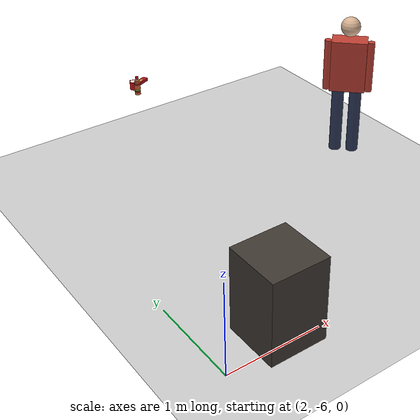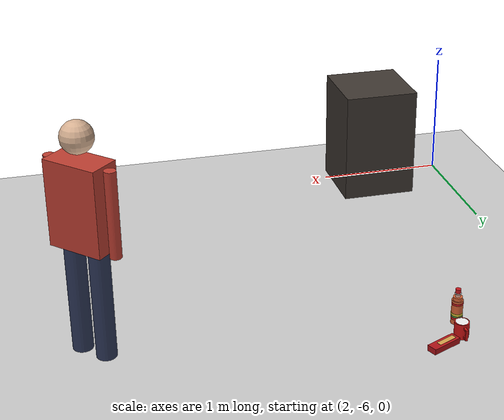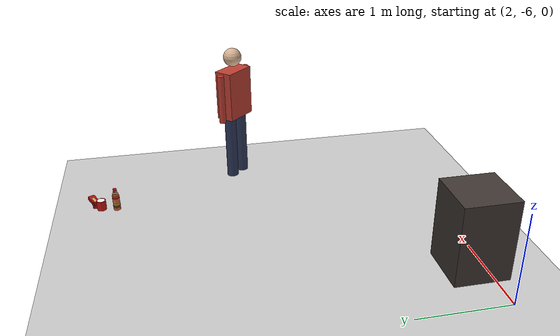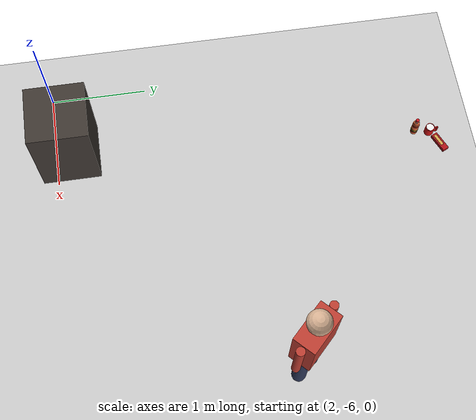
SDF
<sdf version="1.6">
 <world name="robocup_casa">
  <include><uri>model://sun</uri></include>
  <include><uri>model://ground_plane</uri></include>
  <model name="cooking_table">
   <static>true</static>
   <link name="l0">
    <pose>2.660 -5.850 0.450 0 0 0.0000</pose>
    <collision name="c"><geometry><box><size>0.600 0.600 0.900</size></box></geometry></collision>
    <visual name="v">
     <geometry><box><size>0.600 0.600 0.900</size></box></geometry>
     <material><ambient>0.25 0.22 0.20 1</ambient><diffuse>0.25 0.22 0.20 1</diffuse></material>
    </visual>
   </link>
  </model>
  <model name="taza_comedor">
   <pose>3.313 -2.277 0.751 0 0 1.556</pose>
   <link name="link">
    <inertial>
     <pose>0 0 0.0475 0 0 0</pose>
     <mass>0.3</mass>
     <inertia>
      <ixx>3.643e-04</ixx>
      <iyy>3.643e-04</iyy>
      <izz>2.773e-04</izz>
      <ixy>0</ixy>
      <ixz>0</ixz>
      <iyz>0</iyz>
     </inertia>
    </inertial>
    <collision name="c">
     <pose>0 0 0.0475 0 0 0</pose>
     <geometry><cylinder><radius>0.0430</radius><length>0.0950</length></cylinder></geometry>
     <surface><friction><ode><mu>1.0</mu><mu2>1.0</mu2></ode></friction></surface>
    </collision>
    <visual name="v0">
     <pose>0 0 0.0475 0 0 0</pose>
     <geometry><cylinder><radius>0.0430</radius><length>0.0950</length></cylinder></geometry>
     <material><ambient>0.82 0.08 0.08 1</ambient><diffuse>0.82 0.08 0.08 1</diffuse></material>
    </visual>
    <visual name="v1">
     <pose>0 0 0.0945 0 0 0</pose>
     <geometry><cylinder><radius>0.0370</radius><length>0.0020</length></cylinder></geometry>
     <material><ambient>0.95 0.95 0.95 1</ambient><diffuse>0.95 0.95 0.95 1</diffuse></material>
    </visual>
    <visual name="v2">
     <pose>0.073 0 0.048 0 0 0</pose>
     <geometry><box><size>0.0120 0.0140 0.0660</size></box></geometry>
     <material><ambient>0.82 0.08 0.08 1</ambient><diffuse>0.82 0.08 0.08 1</diffuse></material>
    </visual>
    <visual name="v3">
     <pose>0.058 0 0.075 0 0 0</pose>
     <geometry><box><size>0.0320 0.0140 0.0120</size></box></geometry>
     <material><ambient>0.82 0.08 0.08 1</ambient><diffuse>0.82 0.08 0.08 1</diffuse></material>
    </visual>
    <visual name="v4">
     <pose>0.058 0 0.021 0 0 0</pose>
     <geometry><box><size>0.0320 0.0140 0.0120</size></box></geometry>
     <material><ambient>0.82 0.08 0.08 1</ambient><diffuse>0.82 0.08 0.08 1</diffuse></material>
    </visual>
   </link>
  </model>
  <model name="botella_comedor">
   <pose>3.285 -2.419 0.751 0 0 2.356</pose>
   <link name="link">
    <inertial>
     <pose>0 0 0.1100 0 0 0</pose>
     <mass>0.55</mass>
     <inertia>
      <ixx>2.368e-03</ixx>
      <iyy>2.368e-03</iyy>
      <izz>2.995e-04</izz>
      <ixy>0</ixy>
      <ixz>0</ixz>
      <iyz>0</iyz>
     </inertia>
    </inertial>
    <collision name="c">
     <pose>0 0 0.1100 0 0 0</pose>
     <geometry><cylinder><radius>0.0330</radius><length>0.2200</length></cylinder></geometry>
     <surface><friction><ode><mu>1.0</mu><mu2>1.0</mu2></ode></friction></surface>
    </collision>
    <visual name="v0">
     <pose>0 0 0.075 0 0 0</pose>
     <geometry><cylinder><radius>0.0330</radius><length>0.1500</length></cylinder></geometry>
     <material><ambient>0.86 0.40 0.22 1</ambient><diffuse>0.86 0.40 0.22 1</diffuse></material>
    </visual>
    <visual name="v1">
     <pose>0 0 0.16 0 0 0</pose>
     <geometry><cylinder><radius>0.0270</radius><length>0.0200</length></cylinder></geometry>
     <material><ambient>0.86 0.40 0.22 1</ambient><diffuse>0.86 0.40 0.22 1</diffuse></material>
    </visual>
    <visual name="v2">
     <pose>0 0 0.182 0 0 0</pose>
     <geometry><cylinder><radius>0.0150</radius><length>0.0250</length></cylinder></geometry>
     <transparency>0.4</transparency>
     <material><ambient>0.75 0.78 0.80 1</ambient><diffuse>0.75 0.78 0.80 1</diffuse></material>
    </visual>
    <visual name="v3">
     <pose>0 0 0.192 0 0 0</pose>
     <geometry><cylinder><radius>0.0190</radius><length>0.0040</length></cylinder></geometry>
     <transparency>0.2</transparency>
     <material><ambient>0.75 0.78 0.80 1</ambient><diffuse>0.75 0.78 0.80 1</diffuse></material>
    </visual>
    <visual name="v4">
     <pose>0 0 0.2075 0 0 0</pose>
     <geometry><cylinder><radius>0.0160</radius><length>0.0250</length></cylinder></geometry>
     <material><ambient>0.80 0.10 0.12 1</ambient><diffuse>0.80 0.10 0.12 1</diffuse></material>
    </visual>
    <visual name="v5">
     <pose>0 0 0.13 0 0 0</pose>
     <geometry><cylinder><radius>0.0340</radius><length>0.0120</length></cylinder></geometry>
     <material><ambient>0.80 0.10 0.12 1</ambient><diffuse>0.80 0.10 0.12 1</diffuse></material>
    </visual>
    <visual name="v6">
     <pose>0 0 0.0625 0 0 0</pose>
     <geometry><cylinder><radius>0.0340</radius><length>0.0150</length></cylinder></geometry>
     <material><ambient>0.85 0.75 0.20 1</ambient><diffuse>0.85 0.75 0.20 1</diffuse></material>
    </visual>
    <visual name="v7">
     <pose>0 0 0.05 0 0 0</pose>
     <geometry><cylinder><radius>0.0340</radius><length>0.0100</length></cylinder></geometry>
     <material><ambient>0.30 0.60 0.25 1</ambient><diffuse>0.30 0.60 0.25 1</diffuse></material>
    </visual>
    <visual name="v8">
     <pose>0 0 0.0375 0 0 0</pose>
     <geometry><cylinder><radius>0.0340</radius><length>0.0150</length></cylinder></geometry>
     <material><ambient>0.80 0.10 0.12 1</ambient><diffuse>0.80 0.10 0.12 1</diffuse></material>
    </visual>
   </link>
  </model>
  <model name="galletas_comedor">
   <pose>3.448 -2.200 0.751 0 0 -2.727</pose>
   <link name="link">
    <inertial>
     <pose>0 0 0.0175 0 0 0</pose>
     <mass>0.13</mass>
     <inertia>
      <ixx>5.491e-05</ixx>
      <iyy>4.044e-04</iyy>
      <izz>4.327e-04</izz>
      <ixy>0</ixy>
      <ixz>0</ixz>
      <iyz>0</iyz>
     </inertia>
    </inertial>
    <collision name="c">
     <pose>0 0 0.0175 0 0 0</pose>
     <geometry><box><size>0.1900 0.0620 0.0350</size></box></geometry>
     <surface><friction><ode><mu>1.0</mu><mu2>1.0</mu2></ode></friction></surface>
    </collision>
    <visual name="v0">
     <pose>0 0 0.0175 0 0 0</pose>
     <geometry><box><size>0.1900 0.0620 0.0350</size></box></geometry>
     <material><ambient>0.70 0.08 0.10 1</ambient><diffuse>0.70 0.08 0.10 1</diffuse></material>
    </visual>
    <visual name="v1">
     <pose>0.02 0 0.0355 0 0 0</pose>
     <geometry><box><size>0.1200 0.0300 0.0010</size></box></geometry>
     <material><ambient>0.85 0.65 0.30 1</ambient><diffuse>0.85 0.65 0.30 1</diffuse></material>
    </visual>
   </link>
  </model>
  <model name="caminante_comedor">
   <static>false</static>
   <pose>5.251 -3.791 0 0 0 -2.3564</pose>
   <link name="cuerpo">
    <gravity>false</gravity>
    <kinematic>true</kinematic>
    <inertial>
     <mass>70</mass>
     <inertia><ixx>10</ixx><iyy>10</iyy><izz>2</izz><ixy>0</ixy><ixz>0</ixz><iyz>0</iyz></inertia>
    </inertial>
    <collision name="c">
     <pose>0 0 0.85 0 0 0</pose>
     <geometry><cylinder><radius>0.20</radius><length>1.70</length></cylinder></geometry>
    </collision>
    <visual name="piernas_i">
     <pose>0.0 0.1 0.4 0 0 0</pose>
     <geometry><cylinder><radius>0.07</radius><length>0.80</length></cylinder></geometry>
     <material><ambient>0.18 0.22 0.35 1</ambient><diffuse>0.18 0.22 0.35 1</diffuse></material>
    </visual>
    <visual name="piernas_d">
     <pose>0.0 -0.1 0.4 0 0 0</pose>
     <geometry><cylinder><radius>0.07</radius><length>0.80</length></cylinder></geometry>
     <material><ambient>0.18 0.22 0.35 1</ambient><diffuse>0.18 0.22 0.35 1</diffuse></material>
    </visual>
    <visual name="torso">
     <pose>0.0 0.0 1.1 0 0 0</pose>
     <geometry><box><size>0.22 0.40 0.60</size></box></geometry>
     <material><ambient>0.75 0.25 0.2 1</ambient><diffuse>0.75 0.25 0.2 1</diffuse></material>
    </visual>
    <visual name="cabeza">
     <pose>0.0 0.0 1.55 0 0 0</pose>
     <geometry><sphere><radius>0.11</radius></sphere></geometry>
     <material><ambient>0.85 0.7 0.58 1</ambient><diffuse>0.85 0.7 0.58 1</diffuse></material>
    </visual>
    <visual name="brazo_i">
     <pose>0.0 0.24 1.08 0 0 0</pose>
     <geometry><cylinder><radius>0.04</radius><length>0.60</length></cylinder></geometry>
     <material><ambient>0.75 0.25 0.2 1</ambient><diffuse>0.75 0.25 0.2 1</diffuse></material>
    </visual>
    <visual name="brazo_d">
     <pose>0.0 -0.24 1.08 0 0 0</pose>
     <geometry><cylinder><radius>0.04</radius><length>0.60</length></cylinder></geometry>
     <material><ambient>0.75 0.25 0.2 1</ambient><diffuse>0.75 0.25 0.2 1</diffuse></material>
    </visual>
   </link>
  </model>
 </world>
</sdf>
